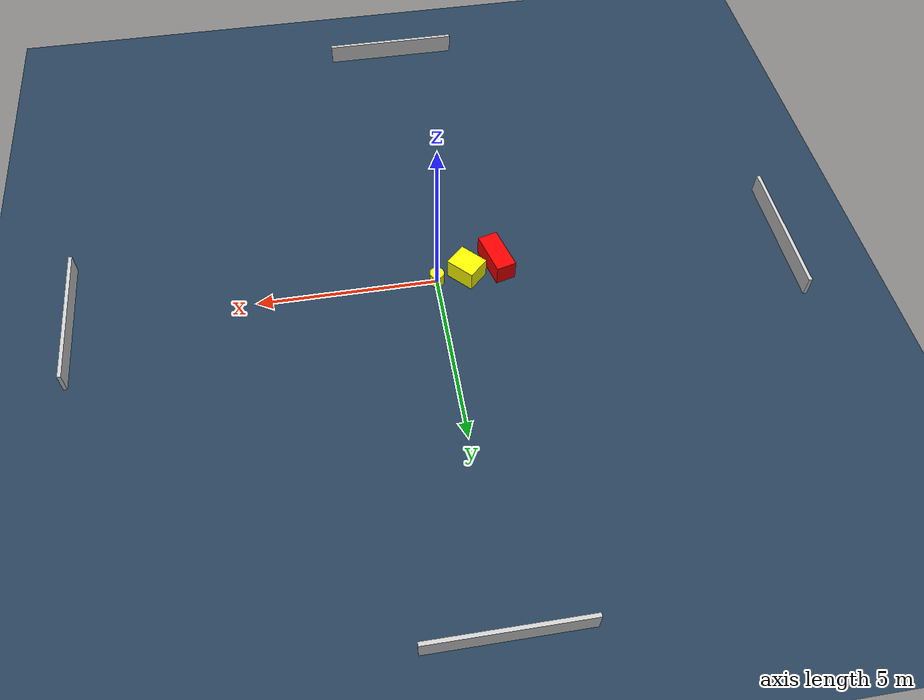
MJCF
<?xml version="1.0" ?>
<mujoco model="generated_environment">
  <option timestep="0.01" integrator="RK4" cone="elliptic"/>
  <default>
    <geom density="1"/>
  </default>
  <asset>
    <texture builtin="gradient" height="3072" name="skybox" rgb1="0.3 0.5 0.7" rgb2="0 0 0" type="skybox" width="512"/>
    <texture builtin="checker" height="300" name="groundplane" rgb1="0.2 0.3 0.4" rgb2="0.1 0.2 0.3" type="2d" width="300"/>
    <material name="groundplane" reflectance="0.2" texrepeat="5 5" texture="groundplane"/>
  </asset>
  <worldbody>
    <light dir="0 0 -1" directional="true" pos="0 0 1.5"/>
    <geom condim="3" friction="0.5 0.005 0.001" material="groundplane" name="floor" pos="0 0 0" size="0 0 0.05" type="plane"/>
    <body name="walls">
      <geom name="wall_1" condim="4" pos="-10.0 0.0 0.3" rgba="0.800000011920929 0.800000011920929 0.800000011920929 1.0" size="0.05 2.0 0.3" type="box"/>
      <geom name="wall_2" condim="4" pos="10.0 0.0 0.3" rgba="0.800000011920929 0.800000011920929 0.800000011920929 1.0" size="0.05 2.0 0.3" type="box"/>
      <geom name="wall_3" condim="4" pos="0.0 -10.0 0.3" rgba="0.800000011920929 0.800000011920929 0.800000011920929 1.0" size="2.0 0.05 0.3" type="box"/>
      <geom name="wall_4" condim="4" pos="0.0 10.0 0.3" rgba="0.800000011920929 0.800000011920929 0.800000011920929 1.0" size="2.0 0.05 0.3" type="box"/>
    </body>
    <body name="robot">
      <joint name="joint_x" type="slide" pos="0 0 0" axis="1 0 0"/>
      <joint name="joint_y" type="slide" pos="0 0 0" axis="0 1 0"/>
      <geom name="robot" type="cylinder" pos="0.0 0.0 0.2" size="0.2 0.2 0.0" mass="5.0" friction="1.0 0.005 0.0001" condim="4" rgba="1.0 1.0 0.0 1.0"/>
    </body>
    <body name="obstacle_1_movable">
      <geom name="obstacle_1_movable" condim="4" pos="-0.8610893401902714 -0.13129155549903906 0.3" euler="0 0 134.0156538131765" friction="0.0 0.005 0.001" rgba="1.0 1.0 0.0 1.0" size="0.41734113960045416 0.34469753988667023 0.3" type="box" mass="0.1"/>
      <joint type="free"/>
    </body>
    <body name="obstacle_2_static">
      <geom name="obstacle_2_static" condim="4" pos="-1.7503260951391746 -0.36880674960925514 0.3" euler="0 0 284.9122554118958" friction="0.0 0.005 0.001" rgba="1.0 0.0 0.0 1.0" size="0.6230565996706012 0.2815550402468862 0.3" type="box"/>
    </body>
  </worldbody>
  <actuator>
    <motor name="actuator_x" joint="joint_x" gear="1" ctrlrange="-1 1"/>
    <motor name="actuator_y" joint="joint_y" gear="1" ctrlrange="-1 1"/>
  </actuator>
</mujoco>
